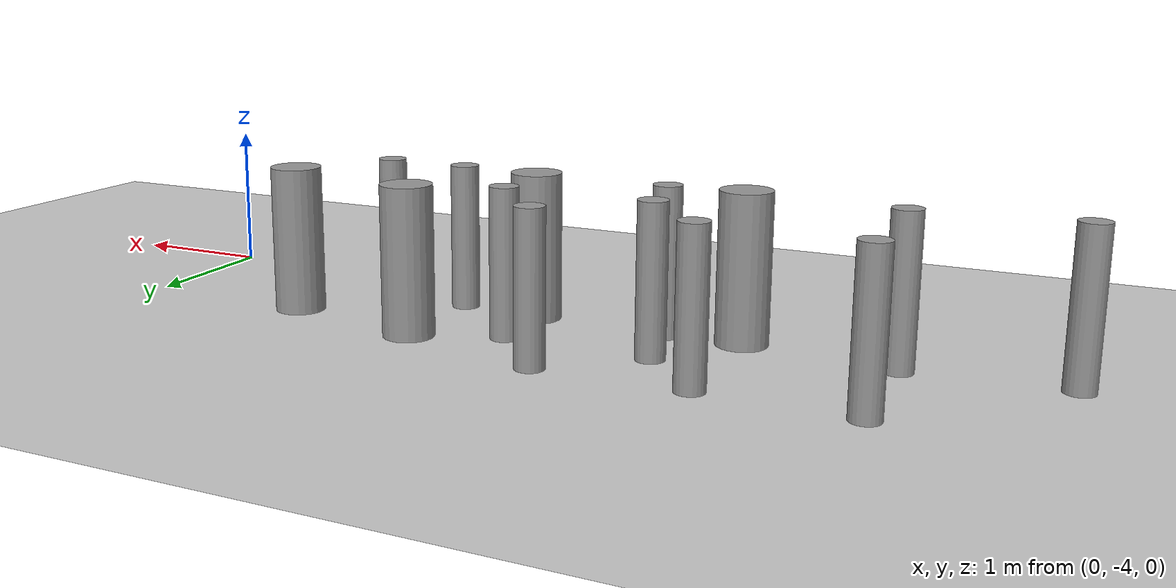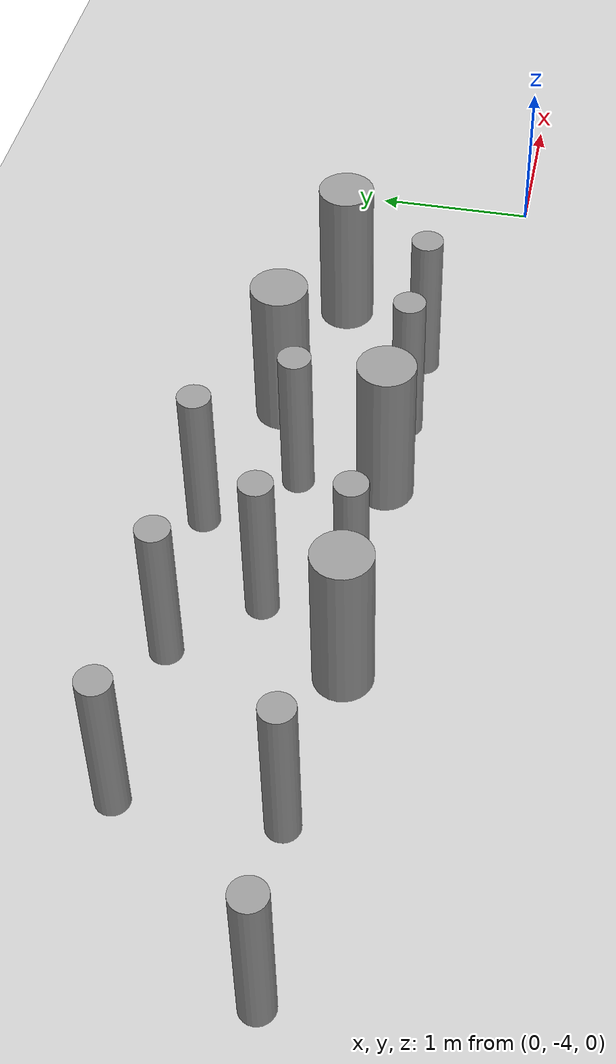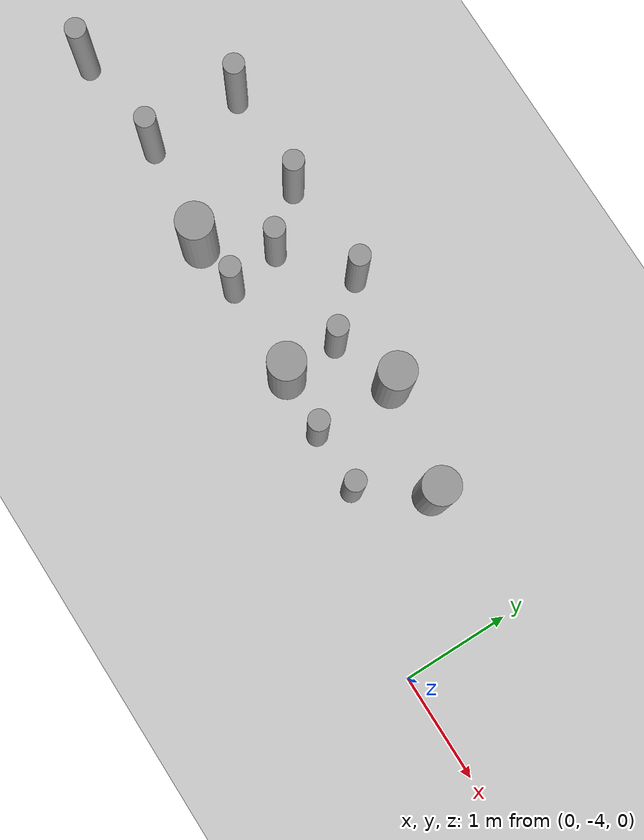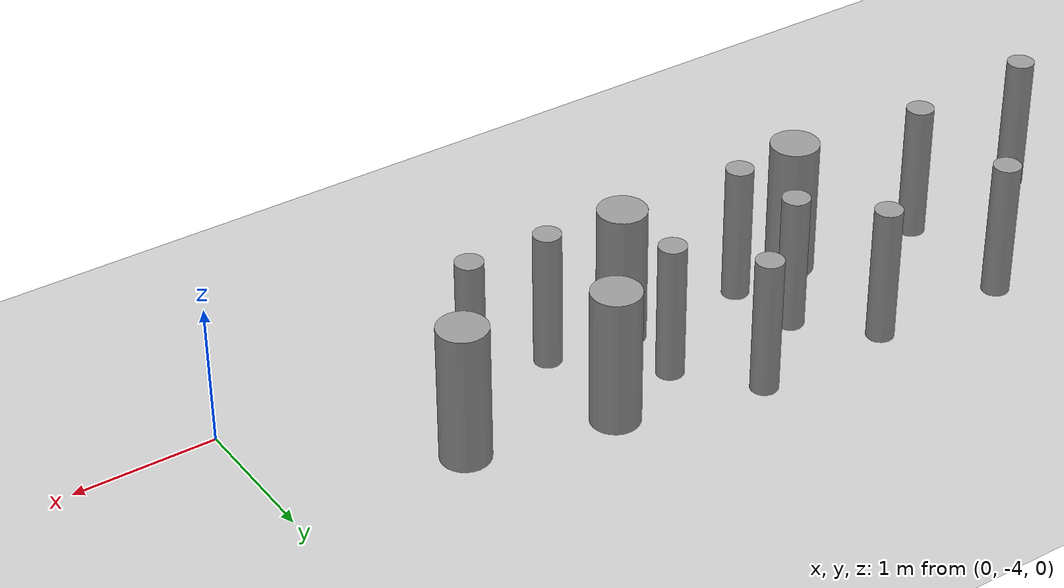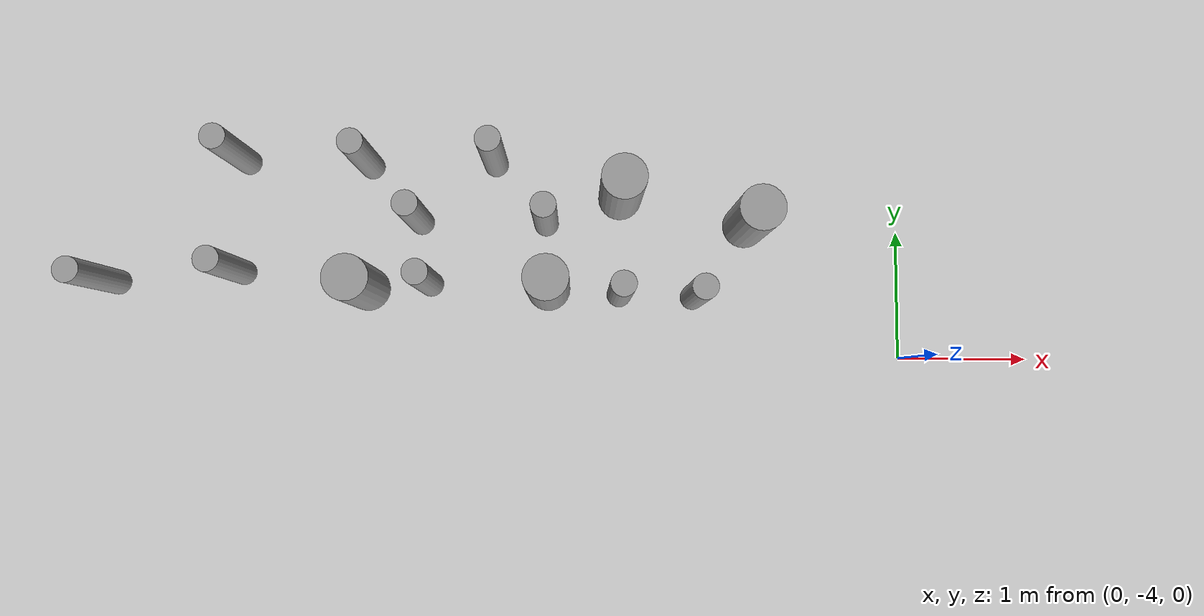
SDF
<sdf version="1.6">
 <world name="default">
  <model name="ground_plane">
   <static>1</static>
   <link name="link">
    <collision name="collision">
     <geometry><plane><normal>0 0 1</normal><size>100 100</size></plane></geometry>
     <surface><friction><ode><mu>100</mu><mu2>50</mu2></ode></friction></surface>
    </collision>
    <visual name="visual">
     <cast_shadows>0</cast_shadows>
     <geometry><plane><normal>0 0 1</normal><size>100 100</size></plane></geometry>
     <material>
      <script><uri>file://media/materials/scripts/gazebo.material</uri><name>Gazebo/Grey</name></script>
     </material>
    </visual>
   </link>
  </model>
  <model name="cyl_wall_clone_0">
   <link name="link_0">
    <pose>-2.73893 -0.366465 0 0 -0 0</pose>
    <inertial>
     <mass>0.0374993</mass>
     <inertia>
      <ixx>0.00321281</ixx>
      <ixy>0</ixy>
      <ixz>0</ixz>
      <iyy>0.00321281</iyy>
      <iyz>0</iyz>
      <izz>0.000175774</izz>
     </inertia>
    </inertial>
    <visual name="visual">
     <geometry><cylinder><radius>0.0968661</radius><length>1</length></cylinder></geometry>
     <material>
      <lighting>1</lighting>
      <script><uri>file://media/materials/scripts/gazebo.material</uri><name>Gazebo/Grey</name></script>
      <ambient>0.3 0.3 0.3 1</ambient>
      <diffuse>0.7 0.7 0.7 1</diffuse>
      <specular>0.01 0.01 0.01 1</specular>
      <emissive>0 0 0 1</emissive>
     </material>
    </visual>
    <collision name="collision">
     <geometry><cylinder><radius>0.096866</radius><length>1</length></cylinder></geometry>
     <surface>
      <friction>
       <ode><mu>1</mu><mu2>1</mu2><fdir1>0 0 0</fdir1><slip1>0</slip1><slip2>0</slip2></ode>
       <torsional>
        <coefficient>1</coefficient>
        <patch_radius>0</patch_radius>
        <surface_radius>0</surface_radius>
        <use_patch_radius>1</use_patch_radius>
        <ode><slip>0</slip></ode>
       </torsional>
      </friction>
      <bounce><restitution_coefficient>0</restitution_coefficient><threshold>1e+06</threshold></bounce>
      <contact>
       <collide_without_contact>0</collide_without_contact>
       <collide_without_contact_bitmask>1</collide_without_contact_bitmask>
       <collide_bitmask>1</collide_bitmask>
       <ode>
        <soft_cfm>0</soft_cfm>
        <soft_erp>0.2</soft_erp>
        <kp>1e+13</kp>
        <kd>1</kd>
        <max_vel>0.01</max_vel>
        <min_depth>0</min_depth>
       </ode>
       <bullet>
        <split_impulse>1</split_impulse>
        <split_impulse_penetration_threshold>-0.01</split_impulse_penetration_threshold>
        <soft_cfm>0</soft_cfm>
        <soft_erp>0.2</soft_erp>
        <kp>1e+13</kp>
        <kd>1</kd>
       </bullet>
      </contact>
     </surface>
    </collision>
   </link>
   <link name="link_0_clone">
    <pose>-1.73893 0.61877 0 0 -0 0</pose>
    <inertial>
     <mass>0.0374993</mass>
     <inertia>
      <ixx>0.00321281</ixx>
      <ixy>0</ixy>
      <ixz>0</ixz>
      <iyy>0.00321281</iyy>
      <iyz>0</iyz>
      <izz>0.000175774</izz>
     </inertia>
    </inertial>
    <visual name="visual">
     <geometry><cylinder><radius>0.0968661</radius><length>1</length></cylinder></geometry>
     <material>
      <lighting>1</lighting>
      <script><uri>file://media/materials/scripts/gazebo.material</uri><name>Gazebo/Grey</name></script>
      <ambient>0.3 0.3 0.3 1</ambient>
      <diffuse>0.7 0.7 0.7 1</diffuse>
      <specular>0.01 0.01 0.01 1</specular>
      <emissive>0 0 0 1</emissive>
      <shader type="pixel"/>
     </material>
    </visual>
    <collision name="collision">
     <geometry><cylinder><radius>0.096866</radius><length>1</length></cylinder></geometry>
     <surface>
      <friction>
       <ode><mu>1</mu><mu2>1</mu2><fdir1>0 0 0</fdir1><slip1>0</slip1><slip2>0</slip2></ode>
       <torsional>
        <coefficient>1</coefficient>
        <patch_radius>0</patch_radius>
        <surface_radius>0</surface_radius>
        <use_patch_radius>1</use_patch_radius>
        <ode><slip>0</slip></ode>
       </torsional>
      </friction>
      <bounce><restitution_coefficient>0</restitution_coefficient><threshold>1e+06</threshold></bounce>
      <contact>
       <collide_without_contact>0</collide_without_contact>
       <collide_without_contact_bitmask>1</collide_without_contact_bitmask>
       <collide_bitmask>1</collide_bitmask>
       <ode>
        <soft_cfm>0</soft_cfm>
        <soft_erp>0.2</soft_erp>
        <kp>1e+13</kp>
        <kd>1</kd>
        <max_vel>0.01</max_vel>
        <min_depth>0</min_depth>
       </ode>
       <bullet>
        <split_impulse>1</split_impulse>
        <split_impulse_penetration_threshold>-0.01</split_impulse_penetration_threshold>
        <soft_cfm>0</soft_cfm>
        <soft_erp>0.2</soft_erp>
        <kp>1e+13</kp>
        <kd>1</kd>
       </bullet>
      </contact>
     </surface>
    </collision>
   </link>
   <link name="link_0_clone_clone">
    <pose>-0.327073 0.143919 0 0 -0 0</pose>
    <inertial>
     <mass>0.0374993</mass>
     <inertia>
      <ixx>0.00321281</ixx>
      <ixy>0</ixy>
      <ixz>0</ixz>
      <iyy>0.00321281</iyy>
      <iyz>0</iyz>
      <izz>0.000175774</izz>
     </inertia>
    </inertial>
    <visual name="visual">
     <geometry><cylinder><radius>0.0968661</radius><length>1</length></cylinder></geometry>
     <material>
      <lighting>1</lighting>
      <script><uri>file://media/materials/scripts/gazebo.material</uri><name>Gazebo/Grey</name></script>
      <ambient>0.3 0.3 0.3 1</ambient>
      <diffuse>0.7 0.7 0.7 1</diffuse>
      <specular>0.01 0.01 0.01 1</specular>
      <emissive>0 0 0 1</emissive>
      <shader type="pixel"/>
     </material>
    </visual>
    <collision name="collision">
     <geometry><cylinder><radius>0.096866</radius><length>1</length></cylinder></geometry>
     <surface>
      <friction>
       <ode><mu>1</mu><mu2>1</mu2><fdir1>0 0 0</fdir1><slip1>0</slip1><slip2>0</slip2></ode>
       <torsional>
        <coefficient>1</coefficient>
        <patch_radius>0</patch_radius>
        <surface_radius>0</surface_radius>
        <use_patch_radius>1</use_patch_radius>
        <ode><slip>0</slip></ode>
       </torsional>
      </friction>
      <bounce><restitution_coefficient>0</restitution_coefficient><threshold>1e+06</threshold></bounce>
      <contact>
       <collide_without_contact>0</collide_without_contact>
       <collide_without_contact_bitmask>1</collide_without_contact_bitmask>
       <collide_bitmask>1</collide_bitmask>
       <ode>
        <soft_cfm>0</soft_cfm>
        <soft_erp>0.2</soft_erp>
        <kp>1e+13</kp>
        <kd>1</kd>
        <max_vel>0.01</max_vel>
        <min_depth>0</min_depth>
       </ode>
       <bullet>
        <split_impulse>1</split_impulse>
        <split_impulse_penetration_threshold>-0.01</split_impulse_penetration_threshold>
        <soft_cfm>0</soft_cfm>
        <soft_erp>0.2</soft_erp>
        <kp>1e+13</kp>
        <kd>1</kd>
       </bullet>
      </contact>
     </surface>
    </collision>
   </link>
   <link name="link_0_clone_clone_0">
    <pose>1.26107 -0.419359 0 0 -0 0</pose>
    <inertial>
     <mass>0.0374993</mass>
     <inertia>
      <ixx>0.00321281</ixx>
      <ixy>0</ixy>
      <ixz>0</ixz>
      <iyy>0.00321281</iyy>
      <iyz>0</iyz>
      <izz>0.000175774</izz>
     </inertia>
    </inertial>
    <visual name="visual">
     <geometry><cylinder><radius>0.0968661</radius><length>1</length></cylinder></geometry>
     <material>
      <lighting>1</lighting>
      <script><uri>file://media/materials/scripts/gazebo.material</uri><name>Gazebo/Grey</name></script>
      <ambient>0.3 0.3 0.3 1</ambient>
      <diffuse>0.7 0.7 0.7 1</diffuse>
      <specular>0.01 0.01 0.01 1</specular>
      <emissive>0 0 0 1</emissive>
      <shader type="pixel"/>
     </material>
    </visual>
    <collision name="collision">
     <geometry><cylinder><radius>0.096866</radius><length>1</length></cylinder></geometry>
     <surface>
      <friction>
       <ode><mu>1</mu><mu2>1</mu2><fdir1>0 0 0</fdir1><slip1>0</slip1><slip2>0</slip2></ode>
       <torsional>
        <coefficient>1</coefficient>
        <patch_radius>0</patch_radius>
        <surface_radius>0</surface_radius>
        <use_patch_radius>1</use_patch_radius>
        <ode><slip>0</slip></ode>
       </torsional>
      </friction>
      <bounce><restitution_coefficient>0</restitution_coefficient><threshold>1e+06</threshold></bounce>
      <contact>
       <collide_without_contact>0</collide_without_contact>
       <collide_without_contact_bitmask>1</collide_without_contact_bitmask>
       <collide_bitmask>1</collide_bitmask>
       <ode>
        <soft_cfm>0</soft_cfm>
        <soft_erp>0.2</soft_erp>
        <kp>1e+13</kp>
        <kd>1</kd>
        <max_vel>0.01</max_vel>
        <min_depth>0</min_depth>
       </ode>
       <bullet>
        <split_impulse>1</split_impulse>
        <split_impulse_penetration_threshold>-0.01</split_impulse_penetration_threshold>
        <soft_cfm>0</soft_cfm>
        <soft_erp>0.2</soft_erp>
        <kp>1e+13</kp>
        <kd>1</kd>
       </bullet>
      </contact>
     </surface>
    </collision>
   </link>
   <link name="link_0_clone_clone_1">
    <pose>-1.73893 -0.277168 0 0 -0 0</pose>
    <inertial>
     <mass>0.0374993</mass>
     <inertia>
      <ixx>0.00321281</ixx>
      <ixy>0</ixy>
      <ixz>0</ixz>
      <iyy>0.00321281</iyy>
      <iyz>0</iyz>
      <izz>0.000175774</izz>
     </inertia>
    </inertial>
    <visual name="visual">
     <geometry><cylinder><radius>0.0968661</radius><length>1</length></cylinder></geometry>
     <material>
      <lighting>1</lighting>
      <script><uri>file://media/materials/scripts/gazebo.material</uri><name>Gazebo/Grey</name></script>
      <ambient>0.3 0.3 0.3 1</ambient>
      <diffuse>0.7 0.7 0.7 1</diffuse>
      <specular>0.01 0.01 0.01 1</specular>
      <emissive>0 0 0 1</emissive>
      <shader type="pixel"/>
     </material>
    </visual>
    <collision name="collision">
     <geometry><cylinder><radius>0.096866</radius><length>1</length></cylinder></geometry>
     <surface>
      <friction>
       <ode><mu>1</mu><mu2>1</mu2><fdir1>0 0 0</fdir1><slip1>0</slip1><slip2>0</slip2></ode>
       <torsional>
        <coefficient>1</coefficient>
        <patch_radius>0</patch_radius>
        <surface_radius>0</surface_radius>
        <use_patch_radius>1</use_patch_radius>
        <ode><slip>0</slip></ode>
       </torsional>
      </friction>
      <bounce><restitution_coefficient>0</restitution_coefficient><threshold>1e+06</threshold></bounce>
      <contact>
       <collide_without_contact>0</collide_without_contact>
       <collide_without_contact_bitmask>1</collide_without_contact_bitmask>
       <collide_bitmask>1</collide_bitmask>
       <ode>
        <soft_cfm>0</soft_cfm>
        <soft_erp>0.2</soft_erp>
        <kp>1e+13</kp>
        <kd>1</kd>
        <max_vel>0.01</max_vel>
        <min_depth>0</min_depth>
       </ode>
       <bullet>
        <split_impulse>1</split_impulse>
        <split_impulse_penetration_threshold>-0.01</split_impulse_penetration_threshold>
        <soft_cfm>0</soft_cfm>
        <soft_erp>0.2</soft_erp>
        <kp>1e+13</kp>
        <kd>1</kd>
       </bullet>
      </contact>
     </surface>
    </collision>
   </link>
   <link name="link_0_clone_clone_2">
    <pose>-0.738934 0.593961 0 0 -0 0</pose>
    <inertial>
     <mass>0.0374993</mass>
     <inertia>
      <ixx>0.00321281</ixx>
      <ixy>0</ixy>
      <ixz>0</ixz>
      <iyy>0.00321281</iyy>
      <iyz>0</iyz>
      <izz>0.000175774</izz>
     </inertia>
    </inertial>
    <visual name="visual">
     <geometry><cylinder><radius>0.0968661</radius><length>1</length></cylinder></geometry>
     <material>
      <lighting>1</lighting>
      <script><uri>file://media/materials/scripts/gazebo.material</uri><name>Gazebo/Grey</name></script>
      <ambient>0.3 0.3 0.3 1</ambient>
      <diffuse>0.7 0.7 0.7 1</diffuse>
      <specular>0.01 0.01 0.01 1</specular>
      <emissive>0 0 0 1</emissive>
      <shader type="pixel"/>
     </material>
    </visual>
    <collision name="collision">
     <geometry><cylinder><radius>0.096866</radius><length>1</length></cylinder></geometry>
     <surface>
      <friction>
       <ode><mu>1</mu><mu2>1</mu2><fdir1>0 0 0</fdir1><slip1>0</slip1><slip2>0</slip2></ode>
       <torsional>
        <coefficient>1</coefficient>
        <patch_radius>0</patch_radius>
        <surface_radius>0</surface_radius>
        <use_patch_radius>1</use_patch_radius>
        <ode><slip>0</slip></ode>
       </torsional>
      </friction>
      <bounce><restitution_coefficient>0</restitution_coefficient><threshold>1e+06</threshold></bounce>
      <contact>
       <collide_without_contact>0</collide_without_contact>
       <collide_without_contact_bitmask>1</collide_without_contact_bitmask>
       <collide_bitmask>1</collide_bitmask>
       <ode>
        <soft_cfm>0</soft_cfm>
        <soft_erp>0.2</soft_erp>
        <kp>1e+13</kp>
        <kd>1</kd>
        <max_vel>0.01</max_vel>
        <min_depth>0</min_depth>
       </ode>
       <bullet>
        <split_impulse>1</split_impulse>
        <split_impulse_penetration_threshold>-0.01</split_impulse_penetration_threshold>
        <soft_cfm>0</soft_cfm>
        <soft_erp>0.2</soft_erp>
        <kp>1e+13</kp>
        <kd>1</kd>
       </bullet>
      </contact>
     </surface>
    </collision>
   </link>
   <link name="link_0_clone_clone_3">
    <pose>0.261066 0.624849 0 0 -0 0</pose>
    <inertial>
     <mass>0.0374993</mass>
     <inertia>
      <ixx>0.00321281</ixx>
      <ixy>0</ixy>
      <ixz>0</ixz>
      <iyy>0.00321281</iyy>
      <iyz>0</iyz>
      <izz>0.000175774</izz>
     </inertia>
    </inertial>
    <visual name="visual">
     <geometry><cylinder><radius>0.0968661</radius><length>1</length></cylinder></geometry>
     <material>
      <lighting>1</lighting>
      <script><uri>file://media/materials/scripts/gazebo.material</uri><name>Gazebo/Grey</name></script>
      <ambient>0.3 0.3 0.3 1</ambient>
      <diffuse>0.7 0.7 0.7 1</diffuse>
      <specular>0.01 0.01 0.01 1</specular>
      <emissive>0 0 0 1</emissive>
      <shader type="pixel"/>
     </material>
    </visual>
    <collision name="collision">
     <geometry><cylinder><radius>0.096866</radius><length>1</length></cylinder></geometry>
     <surface>
      <friction>
       <ode><mu>1</mu><mu2>1</mu2><fdir1>0 0 0</fdir1><slip1>0</slip1><slip2>0</slip2></ode>
       <torsional>
        <coefficient>1</coefficient>
        <patch_radius>0</patch_radius>
        <surface_radius>0</surface_radius>
        <use_patch_radius>1</use_patch_radius>
        <ode><slip>0</slip></ode>
       </torsional>
      </friction>
      <bounce><restitution_coefficient>0</restitution_coefficient><threshold>1e+06</threshold></bounce>
      <contact>
       <collide_without_contact>0</collide_without_contact>
       <collide_without_contact_bitmask>1</collide_without_contact_bitmask>
       <collide_bitmask>1</collide_bitmask>
       <ode>
        <soft_cfm>0</soft_cfm>
        <soft_erp>0.2</soft_erp>
        <kp>1e+13</kp>
        <kd>1</kd>
        <max_vel>0.01</max_vel>
        <min_depth>0</min_depth>
       </ode>
       <bullet>
        <split_impulse>1</split_impulse>
        <split_impulse_penetration_threshold>-0.01</split_impulse_penetration_threshold>
        <soft_cfm>0</soft_cfm>
        <soft_erp>0.2</soft_erp>
        <kp>1e+13</kp>
        <kd>1</kd>
       </bullet>
      </contact>
     </surface>
    </collision>
   </link>
   <link name="link_0_clone_clone_4">
    <pose>-0.239049 -0.353105 0 0 -0 0</pose>
    <inertial>
     <mass>0.0374993</mass>
     <inertia>
      <ixx>0.00321281</ixx>
      <ixy>0</ixy>
      <ixz>0</ixz>
      <iyy>0.00321281</iyy>
      <iyz>0</iyz>
      <izz>0.000175774</izz>
     </inertia>
    </inertial>
    <visual name="visual">
     <geometry><cylinder><radius>0.0968661</radius><length>1</length></cylinder></geometry>
     <material>
      <lighting>1</lighting>
      <script><uri>file://media/materials/scripts/gazebo.material</uri><name>Gazebo/Grey</name></script>
      <ambient>0.3 0.3 0.3 1</ambient>
      <diffuse>0.7 0.7 0.7 1</diffuse>
      <specular>0.01 0.01 0.01 1</specular>
      <emissive>0 0 0 1</emissive>
      <shader type="pixel"/>
     </material>
    </visual>
    <collision name="collision">
     <geometry><cylinder><radius>0.096866</radius><length>1</length></cylinder></geometry>
     <surface>
      <friction>
       <ode><mu>1</mu><mu2>1</mu2><fdir1>0 0 0</fdir1><slip1>0</slip1><slip2>0</slip2></ode>
       <torsional>
        <coefficient>1</coefficient>
        <patch_radius>0</patch_radius>
        <surface_radius>0</surface_radius>
        <use_patch_radius>1</use_patch_radius>
        <ode><slip>0</slip></ode>
       </torsional>
      </friction>
      <bounce><restitution_coefficient>0</restitution_coefficient><threshold>1e+06</threshold></bounce>
      <contact>
       <collide_without_contact>0</collide_without_contact>
       <collide_without_contact_bitmask>1</collide_without_contact_bitmask>
       <collide_bitmask>1</collide_bitmask>
       <ode>
        <soft_cfm>0</soft_cfm>
        <soft_erp>0.2</soft_erp>
        <kp>1e+13</kp>
        <kd>1</kd>
        <max_vel>0.01</max_vel>
        <min_depth>0</min_depth>
       </ode>
       <bullet>
        <split_impulse>1</split_impulse>
        <split_impulse_penetration_threshold>-0.01</split_impulse_penetration_threshold>
        <soft_cfm>0</soft_cfm>
        <soft_erp>0.2</soft_erp>
        <kp>1e+13</kp>
        <kd>1</kd>
       </bullet>
      </contact>
     </surface>
    </collision>
   </link>
   <link name="link_0_clone_clone_5">
    <pose>0.672792 0.143919 0 0 -0 0</pose>
    <inertial>
     <mass>0.0374993</mass>
     <inertia>
      <ixx>0.00321281</ixx>
      <ixy>0</ixy>
      <ixz>0</ixz>
      <iyy>0.00321281</iyy>
      <iyz>0</iyz>
      <izz>0.000175774</izz>
     </inertia>
    </inertial>
    <visual name="visual">
     <geometry><cylinder><radius>0.0968661</radius><length>1</length></cylinder></geometry>
     <material>
      <lighting>1</lighting>
      <script><uri>file://media/materials/scripts/gazebo.material</uri><name>Gazebo/Grey</name></script>
      <ambient>0.3 0.3 0.3 1</ambient>
      <diffuse>0.7 0.7 0.7 1</diffuse>
      <specular>0.01 0.01 0.01 1</specular>
      <emissive>0 0 0 1</emissive>
      <shader type="pixel"/>
     </material>
    </visual>
    <collision name="collision">
     <geometry><cylinder><radius>0.096866</radius><length>1</length></cylinder></geometry>
     <surface>
      <friction>
       <ode><mu>1</mu><mu2>1</mu2><fdir1>0 0 0</fdir1><slip1>0</slip1><slip2>0</slip2></ode>
       <torsional>
        <coefficient>1</coefficient>
        <patch_radius>0</patch_radius>
        <surface_radius>0</surface_radius>
        <use_patch_radius>1</use_patch_radius>
        <ode><slip>0</slip></ode>
       </torsional>
      </friction>
      <bounce><restitution_coefficient>0</restitution_coefficient><threshold>1e+06</threshold></bounce>
      <contact>
       <collide_without_contact>0</collide_without_contact>
       <collide_without_contact_bitmask>1</collide_without_contact_bitmask>
       <collide_bitmask>1</collide_bitmask>
       <ode>
        <soft_cfm>0</soft_cfm>
        <soft_erp>0.2</soft_erp>
        <kp>1e+13</kp>
        <kd>1</kd>
        <max_vel>0.01</max_vel>
        <min_depth>0</min_depth>
       </ode>
       <bullet>
        <split_impulse>1</split_impulse>
        <split_impulse_penetration_threshold>-0.01</split_impulse_penetration_threshold>
        <soft_cfm>0</soft_cfm>
        <soft_erp>0.2</soft_erp>
        <kp>1e+13</kp>
        <kd>1</kd>
       </bullet>
      </contact>
     </surface>
    </collision>
   </link>
   <link name="link_0_clone_clone_6">
    <pose>1.84596 -0.433423 0 0 -0 0</pose>
    <inertial>
     <mass>0.0374993</mass>
     <inertia>
      <ixx>0.00321281</ixx>
      <ixy>0</ixy>
      <ixz>0</ixz>
      <iyy>0.00321281</iyy>
      <iyz>0</iyz>
      <izz>0.000175774</izz>
     </inertia>
    </inertial>
    <visual name="visual">
     <geometry><cylinder><radius>0.0968661</radius><length>1</length></cylinder></geometry>
     <material>
      <lighting>1</lighting>
      <script><uri>file://media/materials/scripts/gazebo.material</uri><name>Gazebo/Grey</name></script>
      <ambient>0.3 0.3 0.3 1</ambient>
      <diffuse>0.7 0.7 0.7 1</diffuse>
      <specular>0.01 0.01 0.01 1</specular>
      <emissive>0 0 0 1</emissive>
      <shader type="pixel"/>
     </material>
    </visual>
    <collision name="collision">
     <geometry><cylinder><radius>0.096866</radius><length>1</length></cylinder></geometry>
     <surface>
      <friction>
       <ode><mu>1</mu><mu2>1</mu2><fdir1>0 0 0</fdir1><slip1>0</slip1><slip2>0</slip2></ode>
       <torsional>
        <coefficient>1</coefficient>
        <patch_radius>0</patch_radius>
        <surface_radius>0</surface_radius>
        <use_patch_radius>1</use_patch_radius>
        <ode><slip>0</slip></ode>
       </torsional>
      </friction>
      <bounce><restitution_coefficient>0</restitution_coefficient><threshold>1e+06</threshold></bounce>
      <contact>
       <collide_without_contact>0</collide_without_contact>
       <collide_without_contact_bitmask>1</collide_without_contact_bitmask>
       <collide_bitmask>1</collide_bitmask>
       <ode>
        <soft_cfm>0</soft_cfm>
        <soft_erp>0.2</soft_erp>
        <kp>1e+13</kp>
        <kd>1</kd>
        <max_vel>0.01</max_vel>
        <min_depth>0</min_depth>
       </ode>
       <bullet>
        <split_impulse>1</split_impulse>
        <split_impulse_penetration_threshold>-0.01</split_impulse_penetration_threshold>
        <soft_cfm>0</soft_cfm>
        <soft_erp>0.2</soft_erp>
        <kp>1e+13</kp>
        <kd>1</kd>
       </bullet>
      </contact>
     </surface>
    </collision>
   </link>
   <link name="link_1">
    <pose>-0.738934 -0.397931 0 0 -0 0</pose>
    <inertial>
     <mass>0.117398</mass>
     <inertia>
      <ixx>0.0106445</ixx>
      <ixy>0</ixy>
      <ixz>0</ixz>
      <iyy>0.0106445</iyy>
      <iyz>0</iyz>
      <izz>0.00172278</izz>
     </inertia>
    </inertial>
    <visual name="visual">
     <geometry><cylinder><radius>0.171317</radius><length>1</length></cylinder></geometry>
     <material>
      <lighting>1</lighting>
      <script><uri>file://media/materials/scripts/gazebo.material</uri><name>Gazebo/Grey</name></script>
      <ambient>0.3 0.3 0.3 1</ambient>
      <diffuse>0.7 0.7 0.7 1</diffuse>
      <specular>0.01 0.01 0.01 1</specular>
      <emissive>0 0 0 1</emissive>
     </material>
    </visual>
    <collision name="collision">
     <geometry><cylinder><radius>0.171317</radius><length>1</length></cylinder></geometry>
     <surface>
      <friction>
       <ode><mu>1</mu><mu2>1</mu2><fdir1>0 0 0</fdir1><slip1>0</slip1><slip2>0</slip2></ode>
       <torsional>
        <coefficient>1</coefficient>
        <patch_radius>0</patch_radius>
        <surface_radius>0</surface_radius>
        <use_patch_radius>1</use_patch_radius>
        <ode><slip>0</slip></ode>
       </torsional>
      </friction>
      <bounce><restitution_coefficient>0</restitution_coefficient><threshold>1e+06</threshold></bounce>
      <contact>
       <collide_without_contact>0</collide_without_contact>
       <collide_without_contact_bitmask>1</collide_without_contact_bitmask>
       <collide_bitmask>1</collide_bitmask>
       <ode>
        <soft_cfm>0</soft_cfm>
        <soft_erp>0.2</soft_erp>
        <kp>1e+13</kp>
        <kd>1</kd>
        <max_vel>0.01</max_vel>
        <min_depth>0</min_depth>
       </ode>
       <bullet>
        <split_impulse>1</split_impulse>
        <split_impulse_penetration_threshold>-0.01</split_impulse_penetration_threshold>
        <soft_cfm>0</soft_cfm>
        <soft_erp>0.2</soft_erp>
        <kp>1e+13</kp>
        <kd>1</kd>
       </bullet>
      </contact>
     </surface>
    </collision>
   </link>
   <link name="link_1_clone">
    <pose>0.697784 -0.380861 0 0 -0 0</pose>
    <inertial>
     <mass>0.117398</mass>
     <inertia>
      <ixx>0.0106445</ixx>
      <ixy>0</ixy>
      <ixz>0</ixz>
      <iyy>0.0106445</iyy>
      <iyz>0</iyz>
      <izz>0.00172278</izz>
     </inertia>
    </inertial>
    <visual name="visual">
     <geometry><cylinder><radius>0.171317</radius><length>1</length></cylinder></geometry>
     <material>
      <lighting>1</lighting>
      <script><uri>file://media/materials/scripts/gazebo.material</uri><name>Gazebo/Grey</name></script>
      <ambient>0.3 0.3 0.3 1</ambient>
      <diffuse>0.7 0.7 0.7 1</diffuse>
      <specular>0.01 0.01 0.01 1</specular>
      <emissive>0 0 0 1</emissive>
      <shader type="pixel"/>
     </material>
    </visual>
    <collision name="collision">
     <geometry><cylinder><radius>0.171317</radius><length>1</length></cylinder></geometry>
     <surface>
      <friction>
       <ode><mu>1</mu><mu2>1</mu2><fdir1>0 0 0</fdir1><slip1>0</slip1><slip2>0</slip2></ode>
       <torsional>
        <coefficient>1</coefficient>
        <patch_radius>0</patch_radius>
        <surface_radius>0</surface_radius>
        <use_patch_radius>1</use_patch_radius>
        <ode><slip>0</slip></ode>
       </torsional>
      </friction>
      <bounce><restitution_coefficient>0</restitution_coefficient><threshold>1e+06</threshold></bounce>
      <contact>
       <collide_without_contact>0</collide_without_contact>
       <collide_without_contact_bitmask>1</collide_without_contact_bitmask>
       <collide_bitmask>1</collide_bitmask>
       <ode>
        <soft_cfm>0</soft_cfm>
        <soft_erp>0.2</soft_erp>
        <kp>1e+13</kp>
        <kd>1</kd>
        <max_vel>0.01</max_vel>
        <min_depth>0</min_depth>
       </ode>
       <bullet>
        <split_impulse>1</split_impulse>
        <split_impulse_penetration_threshold>-0.01</split_impulse_penetration_threshold>
        <soft_cfm>0</soft_cfm>
        <soft_erp>0.2</soft_erp>
        <kp>1e+13</kp>
        <kd>1</kd>
       </bullet>
      </contact>
     </surface>
    </collision>
   </link>
   <link name="link_1_clone_0">
    <pose>1.26107 0.358974 0 0 -0 0</pose>
    <inertial>
     <mass>0.117398</mass>
     <inertia>
      <ixx>0.0106445</ixx>
      <ixy>0</ixy>
      <ixz>0</ixz>
      <iyy>0.0106445</iyy>
      <iyz>0</iyz>
      <izz>0.00172278</izz>
     </inertia>
    </inertial>
    <visual name="visual">
     <geometry><cylinder><radius>0.171317</radius><length>1</length></cylinder></geometry>
     <material>
      <lighting>1</lighting>
      <script><uri>file://media/materials/scripts/gazebo.material</uri><name>Gazebo/Grey</name></script>
      <ambient>0.3 0.3 0.3 1</ambient>
      <diffuse>0.7 0.7 0.7 1</diffuse>
      <specular>0.01 0.01 0.01 1</specular>
      <emissive>0 0 0 1</emissive>
      <shader type="pixel"/>
     </material>
    </visual>
    <collision name="collision">
     <geometry><cylinder><radius>0.171317</radius><length>1</length></cylinder></geometry>
     <surface>
      <friction>
       <ode><mu>1</mu><mu2>1</mu2><fdir1>0 0 0</fdir1><slip1>0</slip1><slip2>0</slip2></ode>
       <torsional>
        <coefficient>1</coefficient>
        <patch_radius>0</patch_radius>
        <surface_radius>0</surface_radius>
        <use_patch_radius>1</use_patch_radius>
        <ode><slip>0</slip></ode>
       </torsional>
      </friction>
      <bounce><restitution_coefficient>0</restitution_coefficient><threshold>1e+06</threshold></bounce>
      <contact>
       <collide_without_contact>0</collide_without_contact>
       <collide_without_contact_bitmask>1</collide_without_contact_bitmask>
       <collide_bitmask>1</collide_bitmask>
       <ode>
        <soft_cfm>0</soft_cfm>
        <soft_erp>0.2</soft_erp>
        <kp>1e+13</kp>
        <kd>1</kd>
        <max_vel>0.01</max_vel>
        <min_depth>0</min_depth>
       </ode>
       <bullet>
        <split_impulse>1</split_impulse>
        <split_impulse_penetration_threshold>-0.01</split_impulse_penetration_threshold>
        <soft_cfm>0</soft_cfm>
        <soft_erp>0.2</soft_erp>
        <kp>1e+13</kp>
        <kd>1</kd>
       </bullet>
      </contact>
     </surface>
    </collision>
   </link>
   <link name="link_1_clone_1">
    <pose>2.26107 0.143919 0 0 -0 0</pose>
    <inertial>
     <mass>0.117398</mass>
     <inertia>
      <ixx>0.0106445</ixx>
      <ixy>0</ixy>
      <ixz>0</ixz>
      <iyy>0.0106445</iyy>
      <iyz>0</iyz>
      <izz>0.00172278</izz>
     </inertia>
    </inertial>
    <visual name="visual">
     <geometry><cylinder><radius>0.171317</radius><length>1</length></cylinder></geometry>
     <material>
      <lighting>1</lighting>
      <script><uri>file://media/materials/scripts/gazebo.material</uri><name>Gazebo/Grey</name></script>
      <ambient>0.3 0.3 0.3 1</ambient>
      <diffuse>0.7 0.7 0.7 1</diffuse>
      <specular>0.01 0.01 0.01 1</specular>
      <emissive>0 0 0 1</emissive>
      <shader type="pixel"/>
     </material>
    </visual>
    <collision name="collision">
     <geometry><cylinder><radius>0.171317</radius><length>1</length></cylinder></geometry>
     <surface>
      <friction>
       <ode><mu>1</mu><mu2>1</mu2><fdir1>0 0 0</fdir1><slip1>0</slip1><slip2>0</slip2></ode>
       <torsional>
        <coefficient>1</coefficient>
        <patch_radius>0</patch_radius>
        <surface_radius>0</surface_radius>
        <use_patch_radius>1</use_patch_radius>
        <ode><slip>0</slip></ode>
       </torsional>
      </friction>
      <bounce><restitution_coefficient>0</restitution_coefficient><threshold>1e+06</threshold></bounce>
      <contact>
       <collide_without_contact>0</collide_without_contact>
       <collide_without_contact_bitmask>1</collide_without_contact_bitmask>
       <collide_bitmask>1</collide_bitmask>
       <ode>
        <soft_cfm>0</soft_cfm>
        <soft_erp>0.2</soft_erp>
        <kp>1e+13</kp>
        <kd>1</kd>
        <max_vel>0.01</max_vel>
        <min_depth>0</min_depth>
       </ode>
       <bullet>
        <split_impulse>1</split_impulse>
        <split_impulse_penetration_threshold>-0.01</split_impulse_penetration_threshold>
        <soft_cfm>0</soft_cfm>
        <soft_erp>0.2</soft_erp>
        <kp>1e+13</kp>
        <kd>1</kd>
       </bullet>
      </contact>
     </surface>
    </collision>
   </link>
   <static>1</static>
   <pose>-3.48505 -3.10303 0.5 0 -0 0</pose>
  </model>
 </world>
</sdf>
